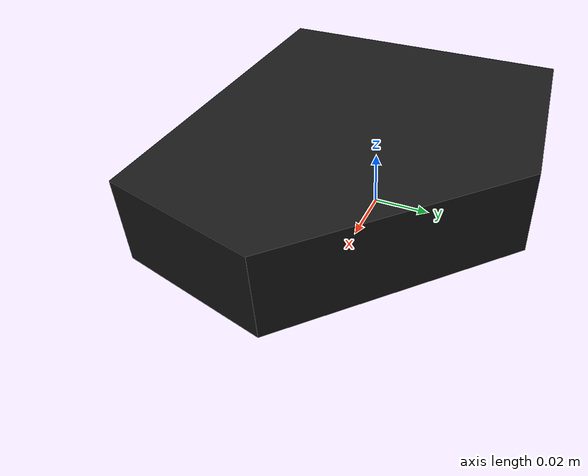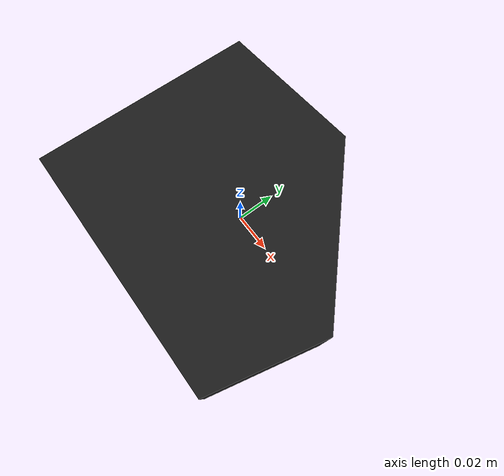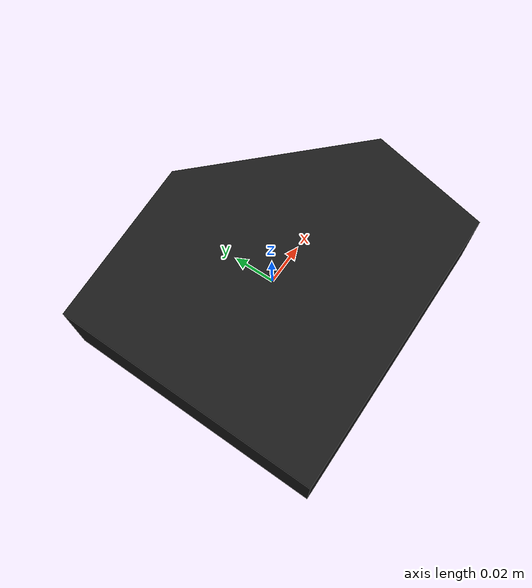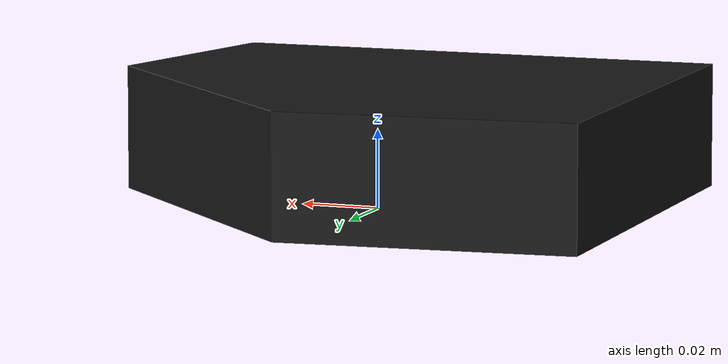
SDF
<?xml version="1.0" ?>
<sdf version="1.6">
  <model name="irregular_pentagon">
    <!-- Link containing the mesh -->
    <link name="irregular_pentagon">

      <!-- Visual representation of the mesh -->
      <visual name="irregular_pentagon">
        <pose>
            -0.0684 -0.0638 0.0 -0.0 0.0 0.0
        </pose>
        <geometry>
          <mesh>
            <uri>pentagon.obj</uri>
            <scale>1 1 1</scale> <!-- Optional scaling -->
          </mesh>
        </geometry>

        <!-- Assigning black color to the mesh -->
        <material>
          <ambient>0.1 0.1 0.1 1</ambient>
          <diffuse>0.1 0.1 0.1 1</diffuse>
          <specular>0.1 0.1 0.1 1</specular>
          <emissive>0.1 0.1 0.1 1</emissive>
        </material>
      </visual>

      <!-- Dummy collision geometry! -->
      <collision name="collision_0">
        <pose>
            0.0 0.0 0.0 -0.0 0.0 0.0
        </pose>
        <geometry>
          <box>
              <size>1 1 0.040875</size>
          </box>
        </geometry>

        <drake:proximity_properties>
          <drake:compliant_hydroelastic/>
          <drake:hydroelastic_modulus>
              1000000.0
          </drake:hydroelastic_modulus>
          <drake:mesh_resolution_hint>
              0.01
          </drake:mesh_resolution_hint>
          <drake:mu_dynamic>
              0.5
          </drake:mu_dynamic>
          <drake:mu_static>
              0.5
          </drake:mu_static>
        </drake:proximity_properties>
      </collision>
    </link>
  </model>
</sdf>
